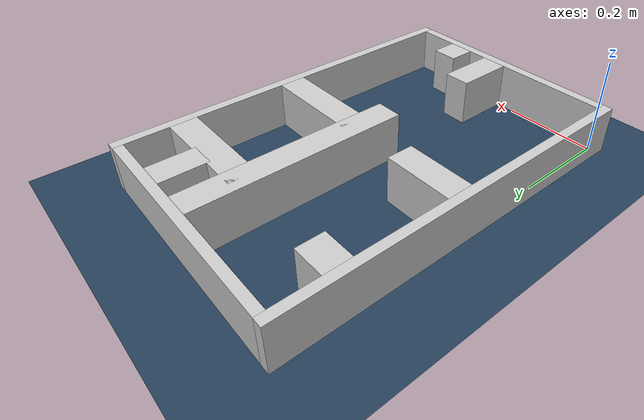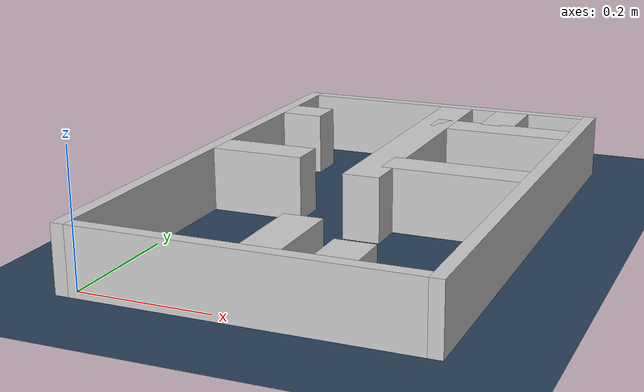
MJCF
<?xml version="1.0" ?>
<mujoco model="generated_real_template">
  <compiler angle="degree"/>
  <option timestep="0.002" integrator="implicitfast" iterations="100" cone="elliptic"/>
  <default>
    <geom density="1"/>
  </default>
  <asset>
    <texture builtin="gradient" height="3072" rgb1="0.3 0.5 0.7" rgb2="0 0 0" type="skybox" width="512"/>
    <texture builtin="checker" height="300" mark="edge" markrgb="0.8 0.8 0.8" name="groundplane" rgb1="0.2 0.3 0.4" rgb2="0.1 0.2 0.3" type="2d" width="300"/>
    <material name="groundplane" reflectance="0.2" texrepeat="5 5" texture="groundplane" texuniform="true"/>
  </asset>
  <worldbody>
    <light dir="0 0 -1" directional="true" pos="0 0 1.5"/>
    <geom name="floor" type="plane" condim="4" friction="0.5 0.005 0.001" material="groundplane" size="0 0 0.05"/>
    <body name="walls">
      <geom name="wall_boundary_left" type="box" condim="4" friction="1.0 0.005 0.0001" rgba="0.8 0.8 0.8 1" pos="-0.010000 0.387500 0.050000" euler="0 0 0.000000" size="0.010000 0.407500 0.050000"/>
      <geom name="wall_boundary_right" type="box" condim="4" friction="1.0 0.005 0.0001" rgba="0.8 0.8 0.8 1" pos="0.500000 0.387500 0.050000" euler="0 0 0.000000" size="0.010000 0.407500 0.050000"/>
      <geom name="wall_boundary_bottom" type="box" condim="4" friction="1.0 0.005 0.0001" rgba="0.8 0.8 0.8 1" pos="0.245000 -0.010000 0.050000" euler="0 0 0.000000" size="0.245000 0.010000 0.050000"/>
      <geom name="wall_boundary_top" type="box" condim="4" friction="1.0 0.005 0.0001" rgba="0.8 0.8 0.8 1" pos="0.245000 0.785000 0.050000" euler="0 0 0.000000" size="0.245000 0.010000 0.050000"/>
      <geom name="wall_inner_1_1" type="box" condim="4" friction="1.0 0.005 0.0001" rgba="0.8 0.8 0.8 1" pos="0.368778 0.029609 0.050000" euler="0 0 90.000000" size="0.029609 0.028500 0.050000"/>
      <geom name="wall_inner_1_2" type="box" condim="4" friction="1.0 0.005 0.0001" rgba="0.8 0.8 0.8 1" pos="0.368778 0.726527 0.050000" euler="0 0 90.000000" size="0.048473 0.028500 0.050000"/>
      <geom name="wall_inner_2_1" type="box" condim="4" friction="1.0 0.005 0.0001" rgba="0.8 0.8 0.8 1" pos="0.268810 0.062493 0.050000" euler="0 0 90.000000" size="0.062493 0.028500 0.050000"/>
      <geom name="wall_inner_2_2" type="box" condim="4" friction="1.0 0.005 0.0001" rgba="0.8 0.8 0.8 1" pos="0.268810 0.548169 0.050000" euler="0 0 90.000000" size="0.226831 0.028500 0.050000"/>
      <geom name="wall_inner_3_1" type="box" condim="4" friction="1.0 0.005 0.0001" rgba="0.8 0.8 0.8 1" pos="0.073725 0.404518 0.050000" euler="0 0 0.000000" size="0.073725 0.028500 0.050000"/>
      <geom name="wall_inner_3_2" type="box" condim="4" friction="1.0 0.005 0.0001" rgba="0.8 0.8 0.8 1" pos="0.384694 0.404518 0.050000" euler="0 0 0.000000" size="0.105306 0.028500 0.050000"/>
      <geom name="wall_inner_4_1" type="box" condim="4" friction="1.0 0.005 0.0001" rgba="0.8 0.8 0.8 1" pos="0.034318 0.656998 0.050000" euler="0 0 0.000000" size="0.034318 0.028500 0.050000"/>
      <geom name="wall_inner_4_2" type="box" condim="4" friction="1.0 0.005 0.0001" rgba="0.8 0.8 0.8 1" pos="0.377019 0.656998 0.050000" euler="0 0 0.000000" size="0.112981 0.028500 0.050000"/>
    </body>
  </worldbody>
</mujoco>
